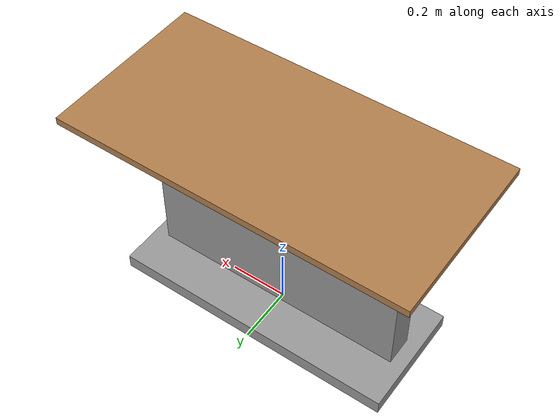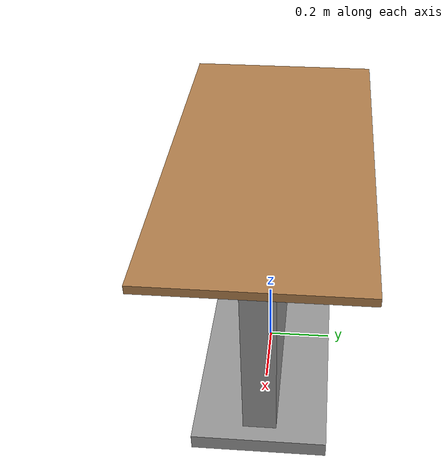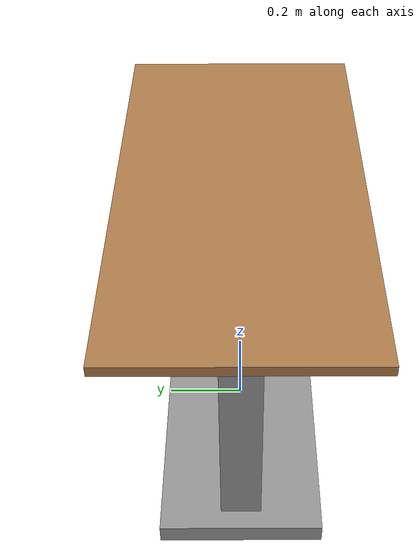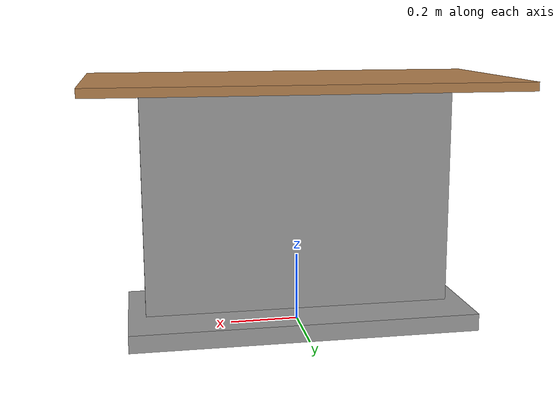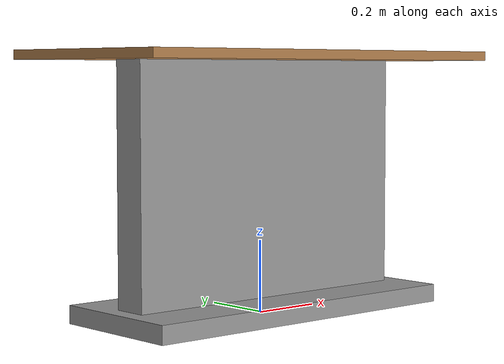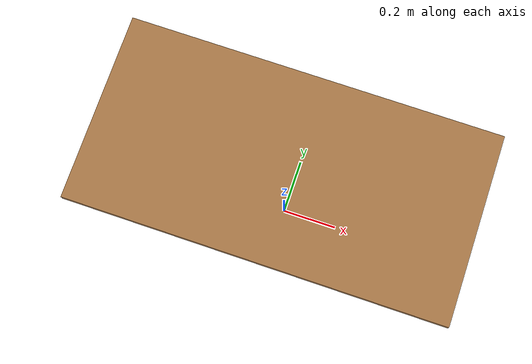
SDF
<?xml version="1.0" ?>
<sdf version="1.5">
  <model name="Table">
    <static>true</static>
    <link name="Table">
      <collision name="surface">
        <pose>0 0 0.7125 0 0 0</pose>
        <geometry>
          <box>
            <size>1.2 0.6 0.025</size>
          </box>
        </geometry>
        <surface>
          <friction>
            <ode>
              <mu>0.6</mu>
              <mu2>0.6</mu2>
            </ode>
          </friction>
        </surface>
      </collision>
      <visual name="visual1">
        <pose>0 0 0.7125 0 0 0</pose>
        <geometry>
          <box>
            <size>1.2 0.6 0.025</size>
          </box>
        </geometry>
        <material>
          <script>
            <uri>file://media/materials/scripts/gazebo.material</uri>
            <name>Gazebo/Wood</name>
          </script>
        </material>
      </visual>
      <collision name="mid-stand">
        <pose>0 0 0.375 0 0 0</pose>
        <geometry>
          <box>
            <size>0.9 0.1 0.65</size>
          </box>
        </geometry>
      </collision>
      <visual name="mid-stand">
        <pose>0 0 0.375 0 0 0</pose>
        <geometry>
          <box>
            <size>0.9 0.1 0.65</size>
          </box>
        </geometry>
        <material>
          <script>
            <uri>file://media/materials/scripts/gazebo.material</uri>
            <name>Gazebo/Grey</name>
          </script>
        </material>
      </visual>
      <collision name="bottom-stand">
        <pose>0 0 0.025 0 0 0</pose>
        <geometry>
          <box>
            <size>1 0.4 0.05</size>
          </box>
        </geometry>
      </collision>
      <visual name="bottom-stand">
        <pose>0 0 0.025 0 0 0</pose>
        <geometry>
          <box>
            <size>1 0.4 0.05</size>
          </box>
        </geometry>
        <material>
          <script>
            <uri>file://media/materials/scripts/gazebo.material</uri>
            <name>Gazebo/Grey</name>
          </script>
        </material>
      </visual>
    </link>
  </model>
</sdf>
